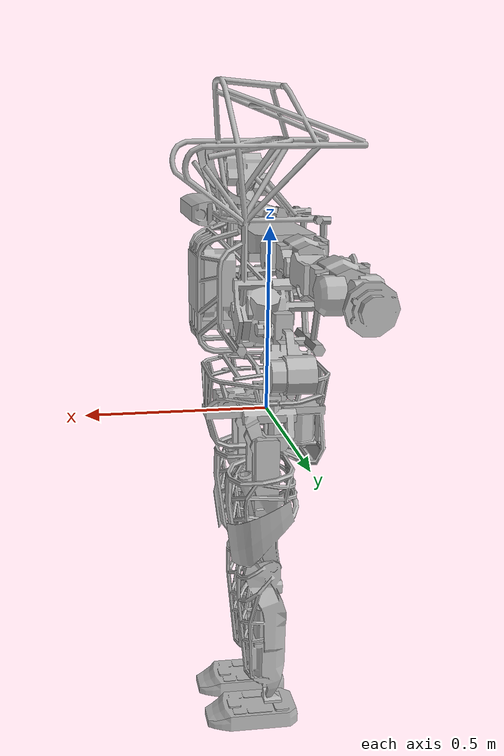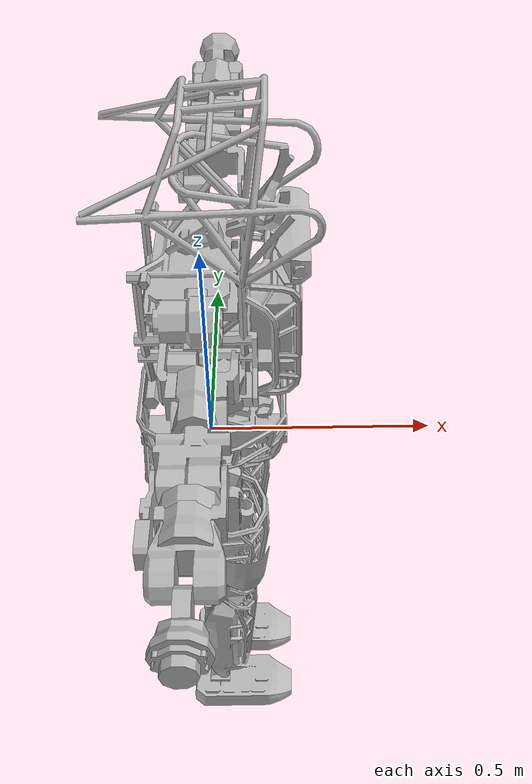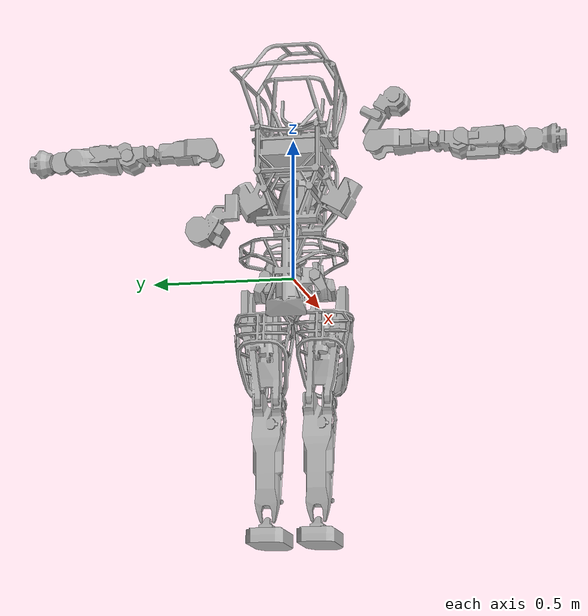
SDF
<sdf version='1.4'>
  <model name='drc_skeleton'>
    <link name='pelvis'>
      <pose>0 0 0 0 -0 0</pose>
      <inertial>
        <pose>0.0111 0 0.0271 0 -0 0</pose>
        <mass>14.2529</mass>
        <inertia>
          <ixx>0.1244</ixx>
          <ixy>0.0008</ixy>
          <ixz>-0.0007</ixz>
          <iyy>0.0958</iyy>
          <iyz>-0.0005</iyz>
          <izz>0.1167</izz>
        </inertia>
      </inertial>
      <collision name='pelvis_collision'>
        <pose>0 0 0 0 -0 0</pose>
        <geometry>
          <mesh>
            <scale>1 1 1</scale>
            <uri>pelvis.stl</uri>
          </mesh>
        </geometry>
      </collision>
      <visual name='pelvis_visual'>
        <pose>0 0 0 0 -0 0</pose>
        <geometry>
          <mesh>
            <scale>1 1 1</scale>
            <uri>pelvis.dae</uri>
          </mesh>
        </geometry>
      </visual>
      <velocity_decay>
        <linear>0</linear>
        <angular>0</angular>
      </velocity_decay>
    </link>
    <link name='ltorso'>
      <pose>-0.0125 0 0 0 -0 0</pose>
      <inertial>
        <pose>-0.0112984 -3.15366e-06 0.0746835 0 -0 0</pose>
        <mass>1.92</mass>
        <inertia>
          <ixx>0.0039092</ixx>
          <ixy>-5.04491e-08</ixy>
          <ixz>-0.000342157</ixz>
          <iyy>0.00341694</iyy>
          <iyz>4.87119e-07</iyz>
          <izz>0.00174492</izz>
        </inertia>
      </inertial>
      <collision name='ltorso_collision'>
        <pose>0 0 0 0 -0 0</pose>
        <geometry>
          <mesh>
            <scale>1 1 1</scale>
            <uri>ltorso.stl</uri>
          </mesh>
        </geometry>
      </collision>
      <visual name='ltorso_visual'>
        <pose>0 0 0 0 -0 0</pose>
        <geometry>
          <mesh>
            <scale>1 1 1</scale>
            <uri>ltorso.dae</uri>
          </mesh>
        </geometry>
      </visual>
      <velocity_decay>
        <linear>0</linear>
        <angular>0</angular>
      </velocity_decay>
    </link>
    <joint name='back_lbz' type='revolute'>
      <child>ltorso</child>
      <parent>pelvis</parent>
      <axis>
        <xyz>0 0 1</xyz>
        <limit>
          <lower>-0.610865</lower>
          <upper>0.610865</upper>
          <effort>124.016</effort>
          <velocity>12</velocity>
        </limit>
        <dynamics>
          <damping>0.1</damping>
        </dynamics>
      </axis>
    </joint>
    <link name='mtorso'>
      <pose>-0.0125 0 0.09 0 -0 0</pose>
      <inertial>
        <pose>-0.00816266 -0.0131245 0.0305974 0 -0 0</pose>
        <mass>0.55</mass>
        <inertia>
          <ixx>0.000454181</ixx>
          <ixy>-6.10764e-05</ixy>
          <ixz>3.94009e-05</ixz>
          <iyy>0.000483282</iyy>
          <iyz>5.27463e-05</iyz>
          <izz>0.000444215</izz>
        </inertia>
      </inertial>
      <collision name='mtorso_collision'>
        <pose>0 0 0 0 -0 0</pose>
        <geometry>
          <mesh>
            <scale>1 1 1</scale>
            <uri>mtorso.stl</uri>
          </mesh>
        </geometry>
      </collision>
      <visual name='mtorso_visual'>
        <pose>0 0 0 0 -0 0</pose>
        <geometry>
          <mesh>
            <scale>1 1 1</scale>
            <uri>mtorso.dae</uri>
          </mesh>
        </geometry>
      </visual>
      <velocity_decay>
        <linear>0</linear>
        <angular>0</angular>
      </velocity_decay>
    </link>
    <joint name='back_mby' type='revolute'>
      <child>mtorso</child>
      <parent>ltorso</parent>
      <axis>
        <xyz>0 1 0</xyz>
        <limit>
          <lower>-1.2</lower>
          <upper>1.28</upper>
          <effort>206.843</effort>
          <velocity>12</velocity>
        </limit>
        <dynamics>
          <damping>0.1</damping>
        </dynamics>
      </axis>
    </joint>
    <link name='utorso'>
      <pose>-0.0125 0 0.14 0 -0 0</pose>
      <inertial>
        <pose>0.02 -0.001 0.211 0 -0 0</pose>
        <mass>18.484</mass>
        <inertia>
          <ixx>0.395</ixx>
          <ixy>0</ixy>
          <ixz>0.083</ixz>
          <iyy>1.089</iyy>
          <iyz>-0.003</iyz>
          <izz>0.327</izz>
        </inertia>
      </inertial>
      <collision name='utorso_collision'>
        <pose>0 0 0 0 -0 0</pose>
        <geometry>
          <mesh>
            <scale>1 1 1</scale>
            <uri>utorso.stl</uri>
          </mesh>
        </geometry>
      </collision>
      <visual name='utorso_visual'>
        <pose>0 0 0 0 -0 0</pose>
        <geometry>
          <mesh>
            <scale>1 1 1</scale>
            <uri>utorso.dae</uri>
          </mesh>
        </geometry>
      </visual>
      <velocity_decay>
        <linear>0</linear>
        <angular>0</angular>
      </velocity_decay>
    </link>
    <joint name='back_ubx' type='revolute'>
      <child>utorso</child>
      <parent>mtorso</parent>
      <axis>
        <xyz>1 0 0</xyz>
        <limit>
          <lower>-0.790809</lower>
          <upper>0.790809</upper>
          <effort>94.91</effort>
          <velocity>12</velocity>
        </limit>
        <dynamics>
          <damping>0.1</damping>
        </dynamics>
      </axis>
    </joint>
    <link name='l_clav'>
      <pose>0.0115 0.221 0.429 0 -0 0</pose>
      <inertial>
        <pose>0.014 0.058 0.029 1.0472 -0 0</pose>
        <mass>2.369</mass>
        <inertia>
          <ixx>0.004</ixx>
          <ixy>0.001</ixy>
          <ixz>0</ixz>
          <iyy>0.006</iyy>
          <iyz>0</iyz>
          <izz>0.007</izz>
        </inertia>
      </inertial>
      <collision name='l_clav_collision'>
        <pose>0 0 0 0 -0 0</pose>
        <geometry>
          <mesh>
            <scale>1 1 1</scale>
            <uri>l_clav.stl</uri>
          </mesh>
        </geometry>
      </collision>
      <visual name='l_clav_visual'>
        <pose>0 0 0 0 -0 0</pose>
        <geometry>
          <mesh>
            <scale>1 1 1</scale>
            <uri>l_clav.dae</uri>
          </mesh>
        </geometry>
      </visual>
      <velocity_decay>
        <linear>0</linear>
        <angular>0</angular>
      </velocity_decay>
    </link>
    <joint name='l_arm_usy' type='revolute'>
      <child>l_clav</child>
      <parent>utorso</parent>
      <axis>
        <xyz>0 0.5 0.866025</xyz>
        <limit>
          <lower>-1.9635</lower>
          <upper>1.9635</upper>
          <effort>212</effort>
          <velocity>12</velocity>
        </limit>
        <dynamics>
          <damping>0.1</damping>
        </dynamics>
      </axis>
    </joint>
    <link name='l_scap'>
      <pose>0.0115 0.296 0.465 0 -0 0</pose>
      <inertial>
        <pose>-0.002 0.108 0 0 -0 0</pose>
        <mass>2.707</mass>
        <inertia>
          <ixx>0.01</ixx>
          <ixy>0</ixy>
          <ixz>0</ixz>
          <iyy>0.005</iyy>
          <iyz>0</iyz>
          <izz>0.013</izz>
        </inertia>
      </inertial>
      <collision name='l_scap_collision'>
        <pose>0 0 0 0 -0 0</pose>
        <geometry>
          <mesh>
            <scale>1 1 1</scale>
            <uri>l_scap.stl</uri>
          </mesh>
        </geometry>
      </collision>
      <visual name='l_scap_visual'>
        <pose>0 0 0 0 -0 0</pose>
        <geometry>
          <mesh>
            <scale>1 1 1</scale>
            <uri>l_scap.dae</uri>
          </mesh>
        </geometry>
      </visual>
      <velocity_decay>
        <linear>0</linear>
        <angular>0</angular>
      </velocity_decay>
    </link>
    <joint name='l_arm_shx' type='revolute'>
      <child>l_scap</child>
      <parent>l_clav</parent>
      <axis>
        <xyz>1 0 0</xyz>
        <limit>
          <lower>-1.39626</lower>
          <upper>1.74533</upper>
          <effort>170</effort>
          <velocity>12</velocity>
        </limit>
        <dynamics>
          <damping>0.1</damping>
        </dynamics>
      </axis>
    </joint>
    <link name='l_uarm'>
      <pose>0.0115 0.481 0.465 0 -0 0</pose>
      <inertial>
        <pose>0.007 0.114 0.008 0 -0 0</pose>
        <mass>1.881</mass>
        <inertia>
          <ixx>0.002</ixx>
          <ixy>0</ixy>
          <ixz>0</ixz>
          <iyy>0.003</iyy>
          <iyz>0</iyz>
          <izz>0.003</izz>
        </inertia>
      </inertial>
      <collision name='l_uarm_collision'>
        <pose>0 0 0 0 -0 0</pose>
        <geometry>
          <mesh>
            <scale>1 1 1</scale>
            <uri>l_uarm.stl</uri>
          </mesh>
        </geometry>
      </collision>
      <visual name='l_uarm_visual'>
        <pose>0 0 0 0 -0 0</pose>
        <geometry>
          <mesh>
            <scale>1 1 1</scale>
            <uri>l_uarm.dae</uri>
          </mesh>
        </geometry>
      </visual>
      <velocity_decay>
        <linear>0</linear>
        <angular>0</angular>
      </velocity_decay>
    </link>
    <joint name='l_arm_ely' type='revolute'>
      <child>l_uarm</child>
      <parent>l_scap</parent>
      <axis>
        <xyz>0 1 0</xyz>
        <limit>
          <lower>0</lower>
          <upper>3.14159</upper>
          <effort>114</effort>
          <velocity>12</velocity>
        </limit>
        <dynamics>
          <damping>0.1</damping>
        </dynamics>
      </axis>
    </joint>
    <link name='l_larm'>
      <pose>0.0115 0.602 0.478 0 -0 0</pose>
      <inertial>
        <pose>-0.003 0.099 -0.014 0 -0 0</pose>
        <mass>2.148</mass>
        <inertia>
          <ixx>0.005</ixx>
          <ixy>0</ixy>
          <ixz>0</ixz>
          <iyy>0.003</iyy>
          <iyz>0</iyz>
          <izz>0.006</izz>
        </inertia>
      </inertial>
      <collision name='l_larm_collision'>
        <pose>0 0 0 0 -0 0</pose>
        <geometry>
          <mesh>
            <scale>1 1 1</scale>
            <uri>l_larm.stl</uri>
          </mesh>
        </geometry>
      </collision>
      <visual name='l_larm_visual'>
        <pose>0 0 0 0 -0 0</pose>
        <geometry>
          <mesh>
            <scale>1 1 1</scale>
            <uri>l_larm.dae</uri>
          </mesh>
        </geometry>
      </visual>
      <velocity_decay>
        <linear>0</linear>
        <angular>0</angular>
      </velocity_decay>
    </link>
    <joint name='l_arm_elx' type='revolute'>
      <child>l_larm</child>
      <parent>l_uarm</parent>
      <axis>
        <xyz>1 0 0</xyz>
        <limit>
          <lower>0</lower>
          <upper>2.35619</upper>
          <effort>114</effort>
          <velocity>12</velocity>
        </limit>
        <dynamics>
          <damping>0.1</damping>
        </dynamics>
      </axis>
    </joint>
    <link name='l_farm'>
      <pose>0.0115 0.79 0.465 0 -0 0</pose>
      <inertial>
        <pose>0 0.041 0 0 -0 0</pose>
        <mass>0.981</mass>
        <inertia>
          <ixx>0.003</ixx>
          <ixy>0</ixy>
          <ixz>0</ixz>
          <iyy>0.001</iyy>
          <iyz>0</iyz>
          <izz>0.003</izz>
        </inertia>
      </inertial>
      <collision name='l_farm_collision'>
        <pose>0 0 0 0 -0 0</pose>
        <geometry>
          <mesh>
            <scale>1 1 1</scale>
            <uri>l_farm.stl</uri>
          </mesh>
        </geometry>
      </collision>
      <visual name='l_farm_visual'>
        <pose>0 0 0 0 -0 0</pose>
        <geometry>
          <mesh>
            <scale>1 1 1</scale>
            <uri>l_farm.dae</uri>
          </mesh>
        </geometry>
      </visual>
      <velocity_decay>
        <linear>0</linear>
        <angular>0</angular>
      </velocity_decay>
    </link>
    <joint name='l_arm_uwy' type='revolute'>
      <child>l_farm</child>
      <parent>l_larm</parent>
      <axis>
        <xyz>0 1 0</xyz>
        <limit>
          <lower>-1.571</lower>
          <upper>1.571</upper>
          <effort>114</effort>
          <velocity>12</velocity>
        </limit>
        <dynamics>
          <damping>0.1</damping>
        </dynamics>
      </axis>
    </joint>
    <link name='l_hand'>
      <pose>0.0115 0.848 0.465 0 -0 0</pose>
      <inertial>
        <pose>0 0.093 0 0 -0 0</pose>
        <mass>2.263</mass>
        <inertia>
          <ixx>0.01</ixx>
          <ixy>0</ixy>
          <ixz>0</ixz>
          <iyy>0.002</iyy>
          <iyz>0</iyz>
          <izz>0.01</izz>
        </inertia>
      </inertial>
      <collision name='l_hand_collision'>
        <pose>0 0 0 0 -0 0</pose>
        <geometry>
          <mesh>
            <scale>1 1 1</scale>
            <uri>l_hand.stl</uri>
          </mesh>
        </geometry>
      </collision>
      <visual name='l_hand_visual'>
        <pose>0 0 0 0 -0 0</pose>
        <geometry>
          <mesh>
            <scale>1 1 1</scale>
            <uri>l_hand.dae</uri>
          </mesh>
        </geometry>
      </visual>
      <velocity_decay>
        <linear>0</linear>
        <angular>0</angular>
      </velocity_decay>
    </link>
    <joint name='l_arm_mwx' type='revolute'>
      <child>l_hand</child>
      <parent>l_farm</parent>
      <axis>
        <xyz>1 0 0</xyz>
        <limit>
          <lower>-0.436</lower>
          <upper>1.571</upper>
          <effort>60</effort>
          <velocity>12</velocity>
        </limit>
        <dynamics>
          <damping>0.1</damping>
        </dynamics>
      </axis>
    </joint>
    <link name='r_clav'>
      <pose>0.0115 -0.221 0.429 0 -0 0</pose>
      <inertial>
        <pose>0.014 -0.058 0.029 -1.0472 0 0</pose>
        <mass>2.369</mass>
        <inertia>
          <ixx>0.004</ixx>
          <ixy>-0.001</ixy>
          <ixz>0</ixz>
          <iyy>0.006</iyy>
          <iyz>0</iyz>
          <izz>0.007</izz>
        </inertia>
      </inertial>
      <collision name='r_clav_collision'>
        <pose>0 0 0 0 -0 0</pose>
        <geometry>
          <mesh>
            <scale>1 1 1</scale>
            <uri>r_clav.stl</uri>
          </mesh>
        </geometry>
      </collision>
      <visual name='r_clav_visual'>
        <pose>0 0 0 0 -0 0</pose>
        <geometry>
          <mesh>
            <scale>1 1 1</scale>
            <uri>r_clav.dae</uri>
          </mesh>
        </geometry>
      </visual>
      <velocity_decay>
        <linear>0</linear>
        <angular>0</angular>
      </velocity_decay>
    </link>
    <joint name='r_arm_usy' type='revolute'>
      <child>r_clav</child>
      <parent>utorso</parent>
      <axis>
        <xyz>0 0.5 -0.866025</xyz>
        <limit>
          <lower>-1.9635</lower>
          <upper>1.9635</upper>
          <effort>212</effort>
          <velocity>12</velocity>
        </limit>
        <dynamics>
          <damping>0.1</damping>
        </dynamics>
      </axis>
    </joint>
    <link name='r_scap'>
      <pose>0.0115 -0.296 0.465 0 -0 0</pose>
      <inertial>
        <pose>-0.002 -0.108 0 0 -0 0</pose>
        <mass>2.707</mass>
        <inertia>
          <ixx>0.01</ixx>
          <ixy>0</ixy>
          <ixz>0</ixz>
          <iyy>0.005</iyy>
          <iyz>0</iyz>
          <izz>0.013</izz>
        </inertia>
      </inertial>
      <collision name='r_scap_collision'>
        <pose>0 0 0 0 -0 0</pose>
        <geometry>
          <mesh>
            <scale>1 1 1</scale>
            <uri>r_scap.stl</uri>
          </mesh>
        </geometry>
      </collision>
      <visual name='r_scap_visual'>
        <pose>0 0 0 0 -0 0</pose>
        <geometry>
          <mesh>
            <scale>1 1 1</scale>
            <uri>r_scap.dae</uri>
          </mesh>
        </geometry>
      </visual>
      <velocity_decay>
        <linear>0</linear>
        <angular>0</angular>
      </velocity_decay>
    </link>
    <joint name='r_arm_shx' type='revolute'>
      <child>r_scap</child>
      <parent>r_clav</parent>
      <axis>
        <xyz>1 0 0</xyz>
        <limit>
          <lower>-1.74533</lower>
          <upper>1.39626</upper>
          <effort>170</effort>
          <velocity>12</velocity>
        </limit>
        <dynamics>
          <damping>0.1</damping>
        </dynamics>
      </axis>
    </joint>
    <link name='r_uarm'>
      <pose>0.0115 -0.481 0.465 0 -0 0</pose>
      <inertial>
        <pose>0.007 -0.114 0.008 0 -0 0</pose>
        <mass>1.881</mass>
        <inertia>
          <ixx>0.002</ixx>
          <ixy>0</ixy>
          <ixz>0</ixz>
          <iyy>0.003</iyy>
          <iyz>0</iyz>
          <izz>0.003</izz>
        </inertia>
      </inertial>
      <collision name='r_uarm_collision'>
        <pose>0 0 0 0 -0 0</pose>
        <geometry>
          <mesh>
            <scale>1 1 1</scale>
            <uri>r_uarm.stl</uri>
          </mesh>
        </geometry>
      </collision>
      <visual name='r_uarm_visual'>
        <pose>0 0 0 0 -0 0</pose>
        <geometry>
          <mesh>
            <scale>1 1 1</scale>
            <uri>r_uarm.dae</uri>
          </mesh>
        </geometry>
      </visual>
      <velocity_decay>
        <linear>0</linear>
        <angular>0</angular>
      </velocity_decay>
    </link>
    <joint name='r_arm_ely' type='revolute'>
      <child>r_uarm</child>
      <parent>r_scap</parent>
      <axis>
        <xyz>0 1 0</xyz>
        <limit>
          <lower>0</lower>
          <upper>3.14159</upper>
          <effort>114</effort>
          <velocity>12</velocity>
        </limit>
        <dynamics>
          <damping>0.1</damping>
        </dynamics>
      </axis>
    </joint>
    <link name='r_larm'>
      <pose>0.0115 -0.602 0.478 0 -0 0</pose>
      <inertial>
        <pose>-0.003 -0.099 -0.014 0 -0 0</pose>
        <mass>2.148</mass>
        <inertia>
          <ixx>0.005</ixx>
          <ixy>0</ixy>
          <ixz>0</ixz>
          <iyy>0.003</iyy>
          <iyz>0</iyz>
          <izz>0.006</izz>
        </inertia>
      </inertial>
      <collision name='r_larm_collision'>
        <pose>0 0 0 0 -0 0</pose>
        <geometry>
          <mesh>
            <scale>1 1 1</scale>
            <uri>r_larm.stl</uri>
          </mesh>
        </geometry>
      </collision>
      <visual name='r_larm_visual'>
        <pose>0 0 0 0 -0 0</pose>
        <geometry>
          <mesh>
            <scale>1 1 1</scale>
            <uri>r_larm.dae</uri>
          </mesh>
        </geometry>
      </visual>
      <velocity_decay>
        <linear>0</linear>
        <angular>0</angular>
      </velocity_decay>
    </link>
    <joint name='r_arm_elx' type='revolute'>
      <child>r_larm</child>
      <parent>r_uarm</parent>
      <axis>
        <xyz>1 0 0</xyz>
        <limit>
          <lower>-2.35619</lower>
          <upper>0</upper>
          <effort>114</effort>
          <velocity>12</velocity>
        </limit>
        <dynamics>
          <damping>0.1</damping>
        </dynamics>
      </axis>
    </joint>
    <link name='r_farm'>
      <pose>0.0115 -0.79 0.465 0 -0 0</pose>
      <inertial>
        <pose>0 -0.041 0 0 -0 0</pose>
        <mass>0.981</mass>
        <inertia>
          <ixx>0.003</ixx>
          <ixy>0</ixy>
          <ixz>0</ixz>
          <iyy>0.001</iyy>
          <iyz>0</iyz>
          <izz>0.003</izz>
        </inertia>
      </inertial>
      <collision name='r_farm_collision'>
        <pose>0 0 0 0 -0 0</pose>
        <geometry>
          <mesh>
            <scale>1 1 1</scale>
            <uri>r_farm.stl</uri>
          </mesh>
        </geometry>
      </collision>
      <visual name='r_farm_visual'>
        <pose>0 0 0 0 -0 0</pose>
        <geometry>
          <mesh>
            <scale>1 1 1</scale>
            <uri>r_farm.dae</uri>
          </mesh>
        </geometry>
      </visual>
      <velocity_decay>
        <linear>0</linear>
        <angular>0</angular>
      </velocity_decay>
    </link>
    <joint name='r_arm_uwy' type='revolute'>
      <child>r_farm</child>
      <parent>r_larm</parent>
      <axis>
        <xyz>0 1 0</xyz>
        <limit>
          <lower>-1.571</lower>
          <upper>1.571</upper>
          <effort>114</effort>
          <velocity>12</velocity>
        </limit>
        <dynamics>
          <damping>0.1</damping>
        </dynamics>
      </axis>
    </joint>
    <link name='r_hand'>
      <pose>0.0115 -0.848 0.465 0 -0 0</pose>
      <inertial>
        <pose>0 -0.093 0 0 -0 0</pose>
        <mass>2.263</mass>
        <inertia>
          <ixx>0.01</ixx>
          <ixy>0</ixy>
          <ixz>-0</ixz>
          <iyy>0.002</iyy>
          <iyz>0</iyz>
          <izz>0.01</izz>
        </inertia>
      </inertial>
      <collision name='r_hand_collision'>
        <pose>0 0 0 0 -0 0</pose>
        <geometry>
          <mesh>
            <scale>1 1 1</scale>
            <uri>r_hand.stl</uri>
          </mesh>
        </geometry>
      </collision>
      <visual name='r_hand_visual'>
        <pose>0 0 0 0 -0 0</pose>
        <geometry>
          <mesh>
            <scale>1 1 1</scale>
            <uri>r_hand.dae</uri>
          </mesh>
        </geometry>
      </visual>
      <velocity_decay>
        <linear>0</linear>
        <angular>0</angular>
      </velocity_decay>
    </link>
    <joint name='r_arm_mwx' type='revolute'>
      <child>r_hand</child>
      <parent>r_farm</parent>
      <axis>
        <xyz>1 0 0</xyz>
        <limit>
          <lower>-1.571</lower>
          <upper>0.436</upper>
          <effort>60</effort>
          <velocity>12</velocity>
        </limit>
        <dynamics>
          <damping>0.1</damping>
        </dynamics>
      </axis>
    </joint>
    <link name='l_uglut'>
      <pose>0 0.089 0 0 -0 0</pose>
      <inertial>
        <pose>0.00529262 -0.00344732 0.00313046 0 -0 0</pose>
        <mass>0.5166</mass>
        <inertia>
          <ixx>0.00074276</ixx>
          <ixy>-3.79607e-08</ixy>
          <ixz>-2.79549e-05</ixz>
          <iyy>0.000688179</iyy>
          <iyz>-3.2735e-08</iyz>
          <izz>0.00041242</izz>
        </inertia>
      </inertial>
      <collision name='l_uglut_collision'>
        <pose>0 0 0 0 -0 0</pose>
        <geometry>
          <mesh>
            <scale>1 1 1</scale>
            <uri>l_uglut.stl</uri>
          </mesh>
        </geometry>
      </collision>
      <visual name='l_uglut_visual'>
        <pose>0 0 0 0 -0 0</pose>
        <geometry>
          <mesh>
            <scale>1 1 1</scale>
            <uri>l_uglut.dae</uri>
          </mesh>
        </geometry>
      </visual>
      <velocity_decay>
        <linear>0</linear>
        <angular>0</angular>
      </velocity_decay>
    </link>
    <joint name='l_leg_uhz' type='revolute'>
      <child>l_uglut</child>
      <parent>pelvis</parent>
      <axis>
        <xyz>0 0 1</xyz>
        <limit>
          <lower>-0.32</lower>
          <upper>1.14</upper>
          <effort>110</effort>
          <velocity>12</velocity>
        </limit>
        <dynamics>
          <damping>0.1</damping>
        </dynamics>
      </axis>
    </joint>
    <link name='l_lglut'>
      <pose>0 0.089 0 0 -0 0</pose>
      <inertial>
        <pose>0.0133341 0.0170484 -0.0312052 0 -0 0</pose>
        <mass>0.69</mass>
        <inertia>
          <ixx>0.000691326</ixx>
          <ixy>-2.24344e-05</ixy>
          <ixz>2.50508e-06</ixz>
          <iyy>0.00126856</iyy>
          <iyz>0.000137862</iyz>
          <izz>0.00106487</izz>
        </inertia>
      </inertial>
      <collision name='l_lglut_collision'>
        <pose>0 0 0 0 -0 0</pose>
        <geometry>
          <mesh>
            <scale>1 1 1</scale>
            <uri>l_lglut.stl</uri>
          </mesh>
        </geometry>
      </collision>
      <visual name='l_lglut_visual'>
        <pose>0 0 0 0 -0 0</pose>
        <geometry>
          <mesh>
            <scale>1 1 1</scale>
            <uri>l_lglut.dae</uri>
          </mesh>
        </geometry>
      </visual>
      <velocity_decay>
        <linear>0</linear>
        <angular>0</angular>
      </velocity_decay>
    </link>
    <joint name='l_leg_mhx' type='revolute'>
      <child>l_lglut</child>
      <parent>l_uglut</parent>
      <axis>
        <xyz>1 0 0</xyz>
        <limit>
          <lower>-0.47</lower>
          <upper>0.495</upper>
          <effort>180</effort>
          <velocity>12</velocity>
        </limit>
        <dynamics>
          <damping>0.1</damping>
        </dynamics>
      </axis>
    </joint>
    <link name='l_uleg'>
      <pose>0.05 0.089 -0.05 0 -0 0</pose>
      <inertial>
        <pose>0 0 -0.21 0 -0 0</pose>
        <mass>7.34</mass>
        <inertia>
          <ixx>0.09</ixx>
          <ixy>0</ixy>
          <ixz>0</ixz>
          <iyy>0.09</iyy>
          <iyz>0</iyz>
          <izz>0.02</izz>
        </inertia>
      </inertial>
      <collision name='l_uleg_collision'>
        <pose>0 0 0 0 -0 0</pose>
        <geometry>
          <mesh>
            <scale>1 1 1</scale>
            <uri>l_uleg.stl</uri>
          </mesh>
        </geometry>
      </collision>
      <visual name='l_uleg_visual'>
        <pose>0 0 0 0 -0 0</pose>
        <geometry>
          <mesh>
            <scale>1 1 1</scale>
            <uri>l_uleg.dae</uri>
          </mesh>
        </geometry>
      </visual>
      <velocity_decay>
        <linear>0</linear>
        <angular>0</angular>
      </velocity_decay>
    </link>
    <joint name='l_leg_lhy' type='revolute'>
      <child>l_uleg</child>
      <parent>l_lglut</parent>
      <axis>
        <xyz>0 1 0</xyz>
        <limit>
          <lower>-1.75</lower>
          <upper>0.524</upper>
          <effort>260</effort>
          <velocity>12</velocity>
        </limit>
        <dynamics>
          <damping>0.1</damping>
        </dynamics>
      </axis>
    </joint>
    <link name='l_lleg'>
      <pose>0 0.089 -0.424 0 -0 0</pose>
      <inertial>
        <pose>0.001 0 -0.187 0 -0 0</pose>
        <mass>4.367</mass>
        <inertia>
          <ixx>0.077</ixx>
          <ixy>0</ixy>
          <ixz>-0.003</ixz>
          <iyy>0.076</iyy>
          <iyz>0</iyz>
          <izz>0.01</izz>
        </inertia>
      </inertial>
      <collision name='l_lleg_collision'>
        <pose>0 0 0 0 -0 0</pose>
        <geometry>
          <mesh>
            <scale>1 1 1</scale>
            <uri>l_lleg.stl</uri>
          </mesh>
        </geometry>
      </collision>
      <visual name='l_lleg_visual'>
        <pose>0 0 0 0 -0 0</pose>
        <geometry>
          <mesh>
            <scale>1 1 1</scale>
            <uri>l_lleg.dae</uri>
          </mesh>
        </geometry>
      </visual>
      <velocity_decay>
        <linear>0</linear>
        <angular>0</angular>
      </velocity_decay>
    </link>
    <joint name='l_leg_kny' type='revolute'>
      <child>l_lleg</child>
      <parent>l_uleg</parent>
      <axis>
        <xyz>0 1 0</xyz>
        <limit>
          <lower>0</lower>
          <upper>2.45</upper>
          <effort>220</effort>
          <velocity>12</velocity>
        </limit>
        <dynamics>
          <damping>0.1</damping>
        </dynamics>
      </axis>
    </joint>
    <link name='l_talus'>
      <pose>0 0.089 -0.846 0 -0 0</pose>
      <inertial>
        <pose>0 0 0 0 -0 0</pose>
        <mass>0.1</mass>
        <inertia>
          <ixx>1.01674e-05</ixx>
          <ixy>0</ixy>
          <ixz>0</ixz>
          <iyy>8.42775e-06</iyy>
          <iyz>0</iyz>
          <izz>1.30101e-05</izz>
        </inertia>
      </inertial>
      <collision name='l_talus_collision'>
        <pose>0 0 0 0 -0 0</pose>
        <geometry>
          <mesh>
            <scale>1 1 1</scale>
            <uri>l_talus.stl</uri>
          </mesh>
        </geometry>
      </collision>
      <visual name='l_talus_visual'>
        <pose>0 0 0 0 -0 0</pose>
        <geometry>
          <mesh>
            <scale>1 1 1</scale>
            <uri>l_talus.dae</uri>
          </mesh>
        </geometry>
      </visual>
      <velocity_decay>
        <linear>0</linear>
        <angular>0</angular>
      </velocity_decay>
    </link>
    <joint name='l_leg_uay' type='revolute'>
      <child>l_talus</child>
      <parent>l_lleg</parent>
      <axis>
        <xyz>0 1 0</xyz>
        <limit>
          <lower>-0.698</lower>
          <upper>0.698</upper>
          <effort>220</effort>
          <velocity>12</velocity>
        </limit>
        <dynamics>
          <damping>0.1</damping>
        </dynamics>
      </axis>
    </joint>
    <link name='l_foot'>
      <pose>0 0.089 -0.846 0 -0 0</pose>
      <inertial>
        <pose>0.027 0 -0.067 0 -0 0</pose>
        <mass>1.634</mass>
        <inertia>
          <ixx>0.002</ixx>
          <ixy>0</ixy>
          <ixz>0</ixz>
          <iyy>0.007</iyy>
          <iyz>0</iyz>
          <izz>0.008</izz>
        </inertia>
      </inertial>
      <soft_shape>
        <total_mass>0.5</total_mass>
        <pose>0.05 0 -0.05 0 0 0</pose>
        <geometry>
          <box>
            <size>0.4 0.175 0.125</size>
            <frags>2 2 2</frags>
          </box>
        </geometry>
	<kv>5000.0</kv>
	<ke>100.0</ke>
	<damp>50.0</damp>
      </soft_shape>
      <collision name='l_foot_collision'>
        <pose>0 0 0 0 -0 0</pose>
        <geometry>
          <mesh>
            <scale>1 1 1</scale>
            <uri>l_foot.stl</uri>
          </mesh>
        </geometry>
      </collision>
      <visual name='l_foot_visual'>
        <pose>0 0 0 0 -0 0</pose>
        <geometry>
          <mesh>
            <scale>1 1 1</scale>
            <uri>l_foot.dae</uri>
          </mesh>
        </geometry>
      </visual>
      <velocity_decay>
        <linear>0</linear>
        <angular>0</angular>
      </velocity_decay>
    </link>
    <joint name='l_leg_lax' type='revolute'>
      <child>l_foot</child>
      <parent>l_talus</parent>
      <axis>
        <xyz>1 0 0</xyz>
        <limit>
          <lower>-0.436</lower>
          <upper>0.436</upper>
          <effort>90</effort>
          <velocity>12</velocity>
        </limit>
        <dynamics>
          <damping>0.1</damping>
        </dynamics>
      </axis>
    </joint>
    <link name='r_uglut'>
      <pose>0 -0.089 0 0 -0 0</pose>
      <inertial>
        <pose>0.00529262 0.00344732 0.00313046 0 -0 0</pose>
        <mass>0.5166</mass>
        <inertia>
          <ixx>0.00074276</ixx>
          <ixy>3.79607e-08</ixy>
          <ixz>-2.79549e-05</ixz>
          <iyy>0.000688179</iyy>
          <iyz>3.2735e-08</iyz>
          <izz>0.00041242</izz>
        </inertia>
      </inertial>
      <collision name='r_uglut_collision'>
        <pose>0 0 0 0 -0 0</pose>
        <geometry>
          <mesh>
            <scale>1 1 1</scale>
            <uri>r_uglut.stl</uri>
          </mesh>
        </geometry>
      </collision>
      <visual name='r_uglut_visual'>
        <pose>0 0 0 0 -0 0</pose>
        <geometry>
          <mesh>
            <scale>1 1 1</scale>
            <uri>r_uglut.dae</uri>
          </mesh>
        </geometry>
      </visual>
      <velocity_decay>
        <linear>0</linear>
        <angular>0</angular>
      </velocity_decay>
    </link>
    <joint name='r_leg_uhz' type='revolute'>
      <child>r_uglut</child>
      <parent>pelvis</parent>
      <axis>
        <xyz>0 0 1</xyz>
        <limit>
          <lower>-1.14</lower>
          <upper>0.32</upper>
          <effort>110</effort>
          <velocity>12</velocity>
        </limit>
        <dynamics>
          <damping>0.1</damping>
        </dynamics>
      </axis>
    </joint>
    <link name='r_lglut'>
      <pose>0 -0.089 0 0 -0 0</pose>
      <inertial>
        <pose>0.0133341 -0.0170484 -0.0312052 0 -0 0</pose>
        <mass>0.69</mass>
        <inertia>
          <ixx>0.000691326</ixx>
          <ixy>2.24344e-05</ixy>
          <ixz>2.50508e-06</ixz>
          <iyy>0.00126856</iyy>
          <iyz>-0.000137862</iyz>
          <izz>0.00106487</izz>
        </inertia>
      </inertial>
      <collision name='r_lglut_collision'>
        <pose>0 0 0 0 -0 0</pose>
        <geometry>
          <mesh>
            <scale>1 1 1</scale>
            <uri>r_lglut.stl</uri>
          </mesh>
        </geometry>
      </collision>
      <visual name='r_lglut_visual'>
        <pose>0 0 0 0 -0 0</pose>
        <geometry>
          <mesh>
            <scale>1 1 1</scale>
            <uri>r_lglut.dae</uri>
          </mesh>
        </geometry>
      </visual>
      <velocity_decay>
        <linear>0</linear>
        <angular>0</angular>
      </velocity_decay>
    </link>
    <joint name='r_leg_mhx' type='revolute'>
      <child>r_lglut</child>
      <parent>r_uglut</parent>
      <axis>
        <xyz>1 0 0</xyz>
        <limit>
          <lower>-0.495</lower>
          <upper>0.47</upper>
          <effort>180</effort>
          <velocity>12</velocity>
        </limit>
        <dynamics>
          <damping>0.1</damping>
        </dynamics>
      </axis>
    </joint>
    <link name='r_uleg'>
      <pose>0.05 -0.089 -0.05 0 -0 0</pose>
      <inertial>
        <pose>0 0 -0.21 0 -0 0</pose>
        <mass>7.34</mass>
        <inertia>
          <ixx>0.09</ixx>
          <ixy>0</ixy>
          <ixz>0</ixz>
          <iyy>0.09</iyy>
          <iyz>0</iyz>
          <izz>0.02</izz>
        </inertia>
      </inertial>
      <collision name='r_uleg_collision'>
        <pose>0 0 0 0 -0 0</pose>
        <geometry>
          <mesh>
            <scale>1 1 1</scale>
            <uri>r_uleg.stl</uri>
          </mesh>
        </geometry>
      </collision>
      <visual name='r_uleg_visual'>
        <pose>0 0 0 0 -0 0</pose>
        <geometry>
          <mesh>
            <scale>1 1 1</scale>
            <uri>r_uleg.dae</uri>
          </mesh>
        </geometry>
      </visual>
      <velocity_decay>
        <linear>0</linear>
        <angular>0</angular>
      </velocity_decay>
    </link>
    <joint name='r_leg_lhy' type='revolute'>
      <child>r_uleg</child>
      <parent>r_lglut</parent>
      <axis>
        <xyz>0 1 0</xyz>
        <limit>
          <lower>-1.745</lower>
          <upper>0.524</upper>
          <effort>260</effort>
          <velocity>12</velocity>
        </limit>
        <dynamics>
          <damping>0.1</damping>
        </dynamics>
      </axis>
    </joint>
    <link name='r_lleg'>
      <pose>0 -0.089 -0.424 0 -0 0</pose>
      <inertial>
        <pose>0.001 0 -0.187 0 -0 0</pose>
        <mass>4.367</mass>
        <inertia>
          <ixx>0.077</ixx>
          <ixy>-0</ixy>
          <ixz>0.003</ixz>
          <iyy>0.076</iyy>
          <iyz>-0</iyz>
          <izz>0.01</izz>
        </inertia>
      </inertial>
      <collision name='r_lleg_collision'>
        <pose>0 0 0 0 -0 0</pose>
        <geometry>
          <mesh>
            <scale>1 1 1</scale>
            <uri>r_lleg.stl</uri>
          </mesh>
        </geometry>
      </collision>
      <visual name='r_lleg_visual'>
        <pose>0 0 0 0 -0 0</pose>
        <geometry>
          <mesh>
            <scale>1 1 1</scale>
            <uri>r_lleg.dae</uri>
          </mesh>
        </geometry>
      </visual>
      <velocity_decay>
        <linear>0</linear>
        <angular>0</angular>
      </velocity_decay>
    </link>
    <joint name='r_leg_kny' type='revolute'>
      <child>r_lleg</child>
      <parent>r_uleg</parent>
      <axis>
        <xyz>0 1 0</xyz>
        <limit>
          <lower>0</lower>
          <upper>2.45</upper>
          <effort>220</effort>
          <velocity>12</velocity>
        </limit>
        <dynamics>
          <damping>0.1</damping>
        </dynamics>
      </axis>
    </joint>
    <link name='r_talus'>
      <pose>0 -0.089 -0.846 0 -0 0</pose>
      <inertial>
        <pose>0 0 0 0 -0 0</pose>
        <mass>0.1</mass>
        <inertia>
          <ixx>1.01674e-05</ixx>
          <ixy>0</ixy>
          <ixz>0</ixz>
          <iyy>8.42775e-06</iyy>
          <iyz>0</iyz>
          <izz>1.30101e-05</izz>
        </inertia>
      </inertial>
      <collision name='r_talus_collision'>
        <pose>0 0 0 0 -0 0</pose>
        <geometry>
          <mesh>
            <scale>1 1 1</scale>
            <uri>r_talus.stl</uri>
          </mesh>
        </geometry>
      </collision>
      <visual name='r_talus_visual'>
        <pose>0 0 0 0 -0 0</pose>
        <geometry>
          <mesh>
            <scale>1 1 1</scale>
            <uri>r_talus.dae</uri>
          </mesh>
        </geometry>
      </visual>
      <velocity_decay>
        <linear>0</linear>
        <angular>0</angular>
      </velocity_decay>
    </link>
    <joint name='r_leg_uay' type='revolute'>
      <child>r_talus</child>
      <parent>r_lleg</parent>
      <axis>
        <xyz>0 1 0</xyz>
        <limit>
          <lower>-0.698</lower>
          <upper>0.698</upper>
          <effort>220</effort>
          <velocity>12</velocity>
        </limit>
        <dynamics>
          <damping>0.1</damping>
        </dynamics>
      </axis>
    </joint>
    <link name='r_foot'>
      <pose>0 -0.089 -0.846 0 -0 0</pose>
      <inertial>
        <pose>0.027 0 -0.067 0 -0 0</pose>
        <mass>1.634</mass>
        <inertia>
          <ixx>0.002</ixx>
          <ixy>0</ixy>
          <ixz>0</ixz>
          <iyy>0.007</iyy>
          <iyz>0</iyz>
          <izz>0.008</izz>
        </inertia>
      </inertial>
      <soft_shape>
        <total_mass>0.5</total_mass>
        <pose>0.05 0 -0.05 0 0 0</pose>
        <geometry>
          <box>
            <size>0.4 0.175 0.125</size>
            <frags>2 2 2</frags>
          </box>
        </geometry>
	<kv>5000.0</kv>
	<ke>100.0</ke>
	<damp>50.0</damp>
      </soft_shape>
      <collision name='r_foot_collision'>
        <pose>0 0 0 0 -0 0</pose>
        <geometry>
          <mesh>
            <scale>1 1 1</scale>
            <uri>r_foot.stl</uri>
          </mesh>
        </geometry>
      </collision>
      <visual name='r_foot_visual'>
        <pose>0 0 0 0 -0 0</pose>
        <geometry>
          <mesh>
            <scale>1 1 1</scale>
            <uri>r_foot.dae</uri>
          </mesh>
        </geometry>
      </visual>
      <velocity_decay>
        <linear>0</linear>
        <angular>0</angular>
      </velocity_decay>
    </link>
    <joint name='r_leg_lax' type='revolute'>
      <child>r_foot</child>
      <parent>r_talus</parent>
      <axis>
        <xyz>1 0 0</xyz>
        <limit>
          <lower>-0.436</lower>
          <upper>0.436</upper>
          <effort>90</effort>
          <velocity>12</velocity>
        </limit>
        <dynamics>
          <damping>0.1</damping>
        </dynamics>
      </axis>
    </joint>
  </model>
</sdf>
